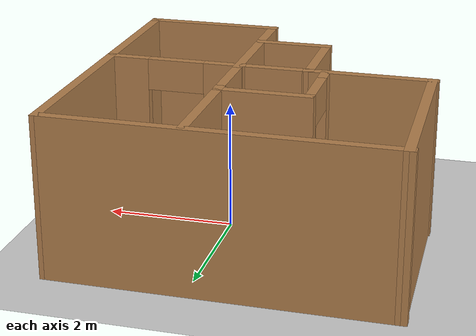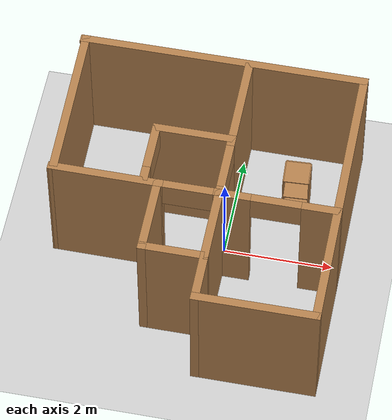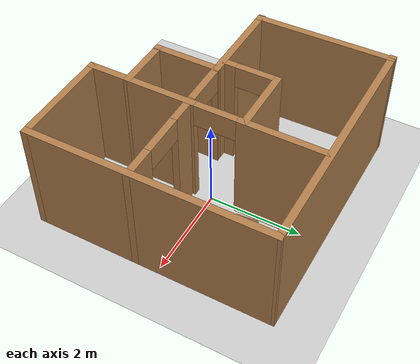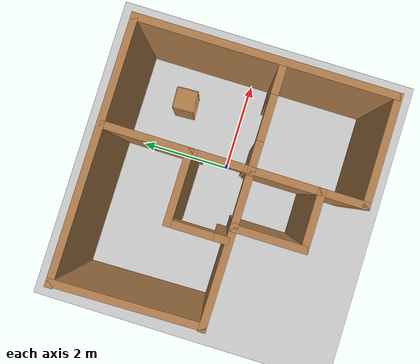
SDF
<sdf version="1.7">
 <world name="default">
  <light name="sun" type="directional">
   <pose>0 0 10 0 -0 0</pose>
   <diffuse>0.8 0.8 0.8 1</diffuse>
   <specular>0.2 0.2 0.2 1</specular>
   <attenuation>
    <range>1000</range>
    <constant>0.9</constant>
    <linear>0.01</linear>
    <quadratic>0.001</quadratic>
   </attenuation>
   <direction>-0.5 0.1 -0.9</direction>
   <spot><inner_angle>0</inner_angle><outer_angle>0</outer_angle><falloff>0</falloff></spot>
  </light>
  <model name="ground_plane">
   <static>1</static>
   <link name="link">
    <collision name="collision">
     <geometry><plane><normal>0 0 1</normal><size>100 100</size></plane></geometry>
     <surface>
      <contact><collide_bitmask>65535</collide_bitmask></contact>
      <friction><ode><mu>100</mu><mu2>50</mu2></ode></friction>
     </surface>
    </collision>
    <visual name="visual">
     <cast_shadows>0</cast_shadows>
     <geometry><plane><normal>0 0 1</normal><size>100 100</size></plane></geometry>
     <material>
      <script><uri>file://media/materials/scripts/gazebo.material</uri><name>Gazebo/Grey</name></script>
     </material>
    </visual>
   </link>
  </model>
  <gravity>0 0 -9.8</gravity>
  <magnetic_field>6e-06 2.3e-05 -4.2e-05</magnetic_field>
  <atmosphere type="adiabatic"/>
  <physics type="ode">
   <max_step_size>0.001</max_step_size>
   <real_time_factor>1</real_time_factor>
   <real_time_update_rate>1000</real_time_update_rate>
  </physics>
  <scene><ambient>0.4 0.4 0.4 1</ambient><background>0.7 0.7 0.7 1</background><shadows>1</shadows></scene>
  <spherical_coordinates>
   <surface_model>EARTH_WGS84</surface_model>
   <latitude_deg>0</latitude_deg>
   <longitude_deg>0</longitude_deg>
   <elevation>0</elevation>
   <heading_deg>0</heading_deg>
  </spherical_coordinates>
  <model name="Robot_house1">
   <pose>-0.487381 -0.117805 0 0 -0 0</pose>
   <link name="Wall_0">
    <collision name="Wall_0_Collision">
     <geometry><box><size>5.29601 0.15 2.5</size></box></geometry>
     <pose>0 0 1.25 0 -0 0</pose>
    </collision>
    <visual name="Wall_0_Visual">
     <pose>0 0 1.25 0 -0 0</pose>
     <geometry><box><size>5.29601 0.15 2.5</size></box></geometry>
     <material>
      <script><uri>file://media/materials/scripts/gazebo.material</uri><name>Gazebo/Wood</name></script>
      <ambient>1 1 1 1</ambient>
     </material>
     <meta><layer>0</layer></meta>
    </visual>
    <pose>0 2.54936 0 0 -0 -0.002235</pose>
   </link>
   <link name="Wall_1">
    <collision name="Wall_1_Collision">
     <geometry><box><size>5.25 0.15 2.5</size></box></geometry>
     <pose>0 0 1.25 0 -0 0</pose>
    </collision>
    <visual name="Wall_1_Visual">
     <pose>0 0 1.25 0 -0 0</pose>
     <geometry><box><size>5.25 0.15 2.5</size></box></geometry>
     <material>
      <script><uri>file://media/materials/scripts/gazebo.material</uri><name>Gazebo/Wood</name></script>
      <ambient>1 1 1 1</ambient>
     </material>
     <meta><layer>0</layer></meta>
    </visual>
    <pose>2.573 -0.006391 0 0 -0 -1.5708</pose>
   </link>
   <link name="Wall_11">
    <pose>-0.077 -0.356391 0 0 -0 0</pose>
    <visual name="Wall_11_Visual_0">
     <pose>-0.538775 0 1.25 0 -0 0</pose>
     <geometry><box><size>0.172449 0.15 2.5</size></box></geometry>
     <material>
      <script><uri>file://media/materials/scripts/gazebo.material</uri><name>Gazebo/Wood</name></script>
      <ambient>1 1 1 1</ambient>
     </material>
     <meta><layer>0</layer></meta>
    </visual>
    <collision name="Wall_11_Collision_0">
     <geometry><box><size>0.172449 0.15 2.5</size></box></geometry>
     <pose>-0.538775 0 1.25 0 -0 0</pose>
    </collision>
    <visual name="Wall_11_Visual_1">
     <pose>0.536225 0 1.25 0 -0 0</pose>
     <geometry><box><size>0.177551 0.15 2.5</size></box></geometry>
     <material>
      <script><uri>file://media/materials/scripts/gazebo.material</uri><name>Gazebo/Wood</name></script>
      <ambient>1 1 1 1</ambient>
     </material>
     <meta><layer>0</layer></meta>
    </visual>
    <collision name="Wall_11_Collision_1">
     <geometry><box><size>0.177551 0.15 2.5</size></box></geometry>
     <pose>0.536225 0 1.25 0 -0 0</pose>
    </collision>
    <visual name="Wall_11_Visual_2">
     <pose>-0.002551 0 2.25 0 -0 0</pose>
     <geometry><box><size>0.9 0.15 0.5</size></box></geometry>
     <material>
      <script><uri>file://media/materials/scripts/gazebo.material</uri><name>Gazebo/Wood</name></script>
      <ambient>1 1 1 1</ambient>
     </material>
     <meta><layer>0</layer></meta>
    </visual>
    <collision name="Wall_11_Collision_2">
     <geometry><box><size>0.9 0.15 0.5</size></box></geometry>
     <pose>-0.002551 0 2.25 0 -0 0</pose>
    </collision>
   </link>
   <link name="Wall_13">
    <pose>1.523 -0.356391 0 0 -0 0</pose>
    <visual name="Wall_13_Visual_0">
     <pose>-0.805525 0 1.25 0 -0 0</pose>
     <geometry><box><size>0.63895 0.15 2.5</size></box></geometry>
     <material>
      <script><uri>file://media/materials/scripts/gazebo.material</uri><name>Gazebo/Wood</name></script>
      <ambient>1 1 1 1</ambient>
     </material>
     <meta><layer>0</layer></meta>
    </visual>
    <collision name="Wall_13_Collision_0">
     <geometry><box><size>0.63895 0.15 2.5</size></box></geometry>
     <pose>-0.805525 0 1.25 0 -0 0</pose>
    </collision>
    <visual name="Wall_13_Visual_1">
     <pose>0.769475 0 1.25 0 -0 0</pose>
     <geometry><box><size>0.71105 0.15 2.5</size></box></geometry>
     <material>
      <script><uri>file://media/materials/scripts/gazebo.material</uri><name>Gazebo/Wood</name></script>
      <ambient>1 1 1 1</ambient>
     </material>
     <meta><layer>0</layer></meta>
    </visual>
    <collision name="Wall_13_Collision_1">
     <geometry><box><size>0.71105 0.15 2.5</size></box></geometry>
     <pose>0.769475 0 1.25 0 -0 0</pose>
    </collision>
    <visual name="Wall_13_Visual_2">
     <pose>-0.03605 0 2.25 0 -0 0</pose>
     <geometry><box><size>0.9 0.15 0.5</size></box></geometry>
     <material>
      <script><uri>file://media/materials/scripts/gazebo.material</uri><name>Gazebo/Wood</name></script>
      <ambient>1 1 1 1</ambient>
     </material>
     <meta><layer>0</layer></meta>
    </visual>
    <collision name="Wall_13_Collision_2">
     <geometry><box><size>0.9 0.15 0.5</size></box></geometry>
     <pose>-0.03605 0 2.25 0 -0 0</pose>
    </collision>
   </link>
   <link name="Wall_15">
    <collision name="Wall_15_Collision">
     <geometry><box><size>1.5 0.15 2.5</size></box></geometry>
     <pose>0 0 1.25 0 -0 0</pose>
    </collision>
    <visual name="Wall_15_Visual">
     <pose>0 0 1.25 0 -0 0</pose>
     <geometry><box><size>1.5 0.15 2.5</size></box></geometry>
     <material>
      <script><uri>file://media/materials/scripts/gazebo.material</uri><name>Gazebo/Wood</name></script>
      <ambient>1 1 1 1</ambient>
     </material>
     <meta><layer>0</layer></meta>
    </visual>
    <pose>-0.211021 0.830257 0 0 -0 3.14159</pose>
   </link>
   <link name="Wall_16">
    <pose>-0.886021 0.280257 0 0 -0 -1.5708</pose>
    <visual name="Wall_16_Visual_0">
     <pose>-0.596374 0 1.25 0 -0 0</pose>
     <geometry><box><size>0.057252 0.15 2.5</size></box></geometry>
     <material>
      <script><uri>file://media/materials/scripts/gazebo.material</uri><name>Gazebo/Wood</name></script>
      <ambient>1 1 1 1</ambient>
     </material>
     <meta><layer>0</layer></meta>
    </visual>
    <collision name="Wall_16_Collision_0">
     <geometry><box><size>0.057252 0.15 2.5</size></box></geometry>
     <pose>-0.596374 0 1.25 0 -0 0</pose>
    </collision>
    <visual name="Wall_16_Visual_1">
     <pose>0.478626 0 1.25 0 -0 0</pose>
     <geometry><box><size>0.292748 0.15 2.5</size></box></geometry>
     <material>
      <script><uri>file://media/materials/scripts/gazebo.material</uri><name>Gazebo/Wood</name></script>
      <ambient>1 1 1 1</ambient>
     </material>
     <meta><layer>0</layer></meta>
    </visual>
    <collision name="Wall_16_Collision_1">
     <geometry><box><size>0.292748 0.15 2.5</size></box></geometry>
     <pose>0.478626 0 1.25 0 -0 0</pose>
    </collision>
    <visual name="Wall_16_Visual_2">
     <pose>-0.117748 0 2.25 0 -0 0</pose>
     <geometry><box><size>0.9 0.15 0.5</size></box></geometry>
     <material>
      <script><uri>file://media/materials/scripts/gazebo.material</uri><name>Gazebo/Wood</name></script>
      <ambient>1 1 1 1</ambient>
     </material>
     <meta><layer>0</layer></meta>
    </visual>
    <collision name="Wall_16_Collision_2">
     <geometry><box><size>0.9 0.15 0.5</size></box></geometry>
     <pose>-0.117748 0 2.25 0 -0 0</pose>
    </collision>
   </link>
   <link name="Wall_2">
    <collision name="Wall_2_Collision">
     <geometry><box><size>2.25 0.15 2.5</size></box></geometry>
     <pose>0 0 1.25 0 -0 0</pose>
    </collision>
    <visual name="Wall_2_Visual">
     <pose>0 0 1.25 0 -0 0</pose>
     <geometry><box><size>2.25 0.15 2.5</size></box></geometry>
     <material>
      <script><uri>file://media/materials/scripts/gazebo.material</uri><name>Gazebo/Wood</name></script>
      <ambient>1 1 1 1</ambient>
     </material>
     <meta><layer>0</layer></meta>
    </visual>
    <pose>1.523 -2.55639 0 0 -0 3.14159</pose>
   </link>
   <link name="Wall_3">
    <collision name="Wall_3_Collision">
     <geometry><box><size>1 0.15 2.5</size></box></geometry>
     <pose>0 0 1.25 0 -0 0</pose>
    </collision>
    <visual name="Wall_3_Visual">
     <pose>0 0 1.25 0 -0 0</pose>
     <geometry><box><size>1 0.15 2.5</size></box></geometry>
     <material>
      <script><uri>file://media/materials/scripts/gazebo.material</uri><name>Gazebo/Wood</name></script>
      <ambient>1 1 1 1</ambient>
     </material>
     <meta><layer>0</layer></meta>
    </visual>
    <pose>0.473 -2.13139 0 0 -0 1.5708</pose>
   </link>
   <link name="Wall_4">
    <collision name="Wall_4_Collision">
     <geometry><box><size>1.25 0.15 2.5</size></box></geometry>
     <pose>0 0 1.25 0 -0 0</pose>
    </collision>
    <visual name="Wall_4_Visual">
     <pose>0 0 1.25 0 -0 0</pose>
     <geometry><box><size>1.25 0.15 2.5</size></box></geometry>
     <material>
      <script><uri>file://media/materials/scripts/gazebo.material</uri><name>Gazebo/Wood</name></script>
      <ambient>1 1 1 1</ambient>
     </material>
     <meta><layer>0</layer></meta>
    </visual>
    <pose>-0.077 -1.70639 0 0 -0 3.14159</pose>
   </link>
   <link name="Wall_5">
    <collision name="Wall_5_Collision">
     <geometry><box><size>1.5 0.15 2.5</size></box></geometry>
     <pose>0 0 1.25 0 -0 0</pose>
    </collision>
    <visual name="Wall_5_Visual">
     <pose>0 0 1.25 0 -0 0</pose>
     <geometry><box><size>1.5 0.15 2.5</size></box></geometry>
     <material>
      <script><uri>file://media/materials/scripts/gazebo.material</uri><name>Gazebo/Wood</name></script>
      <ambient>1 1 1 1</ambient>
     </material>
     <meta><layer>0</layer></meta>
    </visual>
    <pose>-0.627 -1.03139 0 0 -0 1.5708</pose>
   </link>
   <link name="Wall_6">
    <collision name="Wall_6_Collision">
     <geometry><box><size>2.04603 0.15 2.5</size></box></geometry>
     <pose>0 0 1.25 0 -0 0</pose>
    </collision>
    <visual name="Wall_6_Visual">
     <pose>0 0 1.25 0 -0 0</pose>
     <geometry><box><size>2.04603 0.15 2.5</size></box></geometry>
     <material>
      <script><uri>file://media/materials/scripts/gazebo.material</uri><name>Gazebo/Wood</name></script>
      <ambient>1 1 1 1</ambient>
     </material>
     <meta><layer>0</layer></meta>
    </visual>
    <pose>-1.575 -0.350641 0 0 -0 3.13553</pose>
   </link>
   <link name="Wall_7">
    <collision name="Wall_7_Collision">
     <geometry><box><size>3.05043 0.15 2.5</size></box></geometry>
     <pose>0 0 1.25 0 -0 0</pose>
    </collision>
    <visual name="Wall_7_Visual">
     <pose>0 0 1.25 0 -0 0</pose>
     <geometry><box><size>3.05043 0.15 2.5</size></box></geometry>
     <material>
      <script><uri>file://media/materials/scripts/gazebo.material</uri><name>Gazebo/Wood</name></script>
      <ambient>1 1 1 1</ambient>
     </material>
     <meta><layer>0</layer></meta>
    </visual>
    <pose>-2.525 1.10511 0 0 -0 1.58804</pose>
   </link>
   <link name="Wall_9">
    <pose>0.476094 0.39081 0 0 -0 -1.57227</pose>
    <visual name="Wall_9_Visual_0">
     <pose>-1.23101 0 1.25 0 -0 0</pose>
     <geometry><box><size>1.88238 0.15 2.5</size></box></geometry>
     <material>
      <script><uri>file://media/materials/scripts/gazebo.material</uri><name>Gazebo/Wood</name></script>
      <ambient>1 1 1 1</ambient>
     </material>
     <meta><layer>0</layer></meta>
    </visual>
    <collision name="Wall_9_Collision_0">
     <geometry><box><size>1.88238 0.15 2.5</size></box></geometry>
     <pose>-1.23101 0 1.25 0 -0 0</pose>
    </collision>
    <visual name="Wall_9_Visual_1">
     <pose>1.39119 0 1.25 0 -0 0</pose>
     <geometry><box><size>1.56202 0.15 2.5</size></box></geometry>
     <material>
      <script><uri>file://media/materials/scripts/gazebo.material</uri><name>Gazebo/Wood</name></script>
      <ambient>1 1 1 1</ambient>
     </material>
     <meta><layer>0</layer></meta>
    </visual>
    <collision name="Wall_9_Collision_1">
     <geometry><box><size>1.56202 0.15 2.5</size></box></geometry>
     <pose>1.39119 0 1.25 0 -0 0</pose>
    </collision>
    <visual name="Wall_9_Visual_2">
     <pose>0.16018 0 2.25 0 -0 0</pose>
     <geometry><box><size>0.9 0.15 0.5</size></box></geometry>
     <material>
      <script><uri>file://media/materials/scripts/gazebo.material</uri><name>Gazebo/Wood</name></script>
      <ambient>1 1 1 1</ambient>
     </material>
     <meta><layer>0</layer></meta>
    </visual>
    <collision name="Wall_9_Collision_2">
     <geometry><box><size>0.9 0.15 0.5</size></box></geometry>
     <pose>0.16018 0 2.25 0 -0 0</pose>
    </collision>
   </link>
   <static>1</static>
  </model>
  <model name="cabinet">
   <static>1</static>
   <link name="cabinet_bottom_plate">
    <inertial>
     <pose>0 0 -1 0 -0 0</pose>
     <inertia><ixx>2.05</ixx><ixy>0</ixy><ixz>0</ixz><iyy>2.05</iyy><iyz>0</iyz><izz>2.05</izz></inertia>
     <mass>25</mass>
    </inertial>
    <collision name="cabinet_bottom_plate_geom">
     <pose>0 0 0.01 0 -0 0</pose>
     <geometry><box><size>0.45 0.45 0.02</size></box></geometry>
    </collision>
    <visual name="cabinet_bottom_plate_geom_visual">
     <pose>0 0 0.01 0 -0 0</pose>
     <geometry><box><size>0.45 0.45 0.02</size></box></geometry>
     <material>
      <script><uri>file://media/materials/scripts/gazebo.material</uri><name>Gazebo/Wood</name></script>
     </material>
    </visual>
    <collision name="cabinet_bottom_plate_geom_cabinet_back_plate">
     <pose>0.235 0 0.51 0 -0 0</pose>
     <geometry><box><size>0.02 0.45 1.02</size></box></geometry>
    </collision>
    <visual name="cabinet_bottom_plate_geom_cabinet_back_plate_visual">
     <pose>0.235 0 0.51 0 -0 0</pose>
     <geometry><box><size>0.02 0.45 1.02</size></box></geometry>
     <material>
      <script><uri>file://media/materials/scripts/gazebo.material</uri><name>Gazebo/Wood</name></script>
     </material>
    </visual>
    <collision name="cabinet_bottom_plate_geom_cabinet_left_plate">
     <pose>0 0.235 0.51 0 -0 0</pose>
     <geometry><box><size>0.45 0.02 1.02</size></box></geometry>
    </collision>
    <visual name="cabinet_bottom_plate_geom_cabinet_left_plate_visual">
     <pose>0 0.235 0.51 0 -0 0</pose>
     <geometry><box><size>0.45 0.02 1.02</size></box></geometry>
     <material>
      <script><uri>file://media/materials/scripts/gazebo.material</uri><name>Gazebo/Wood</name></script>
     </material>
    </visual>
    <collision name="cabinet_bottom_plate_geom_cabinet_middle_plate">
     <pose>0 0 0.51 0 -0 0</pose>
     <geometry><box><size>0.45 0.45 0.02</size></box></geometry>
    </collision>
    <visual name="cabinet_bottom_plate_geom_cabinet_middle_plate_visual">
     <pose>0 0 0.51 0 -0 0</pose>
     <geometry><box><size>0.45 0.45 0.02</size></box></geometry>
     <material>
      <script><uri>file://media/materials/scripts/gazebo.material</uri><name>Gazebo/Wood</name></script>
     </material>
    </visual>
    <collision name="cabinet_bottom_plate_geom_cabinet_right_plate">
     <pose>0 -0.235 0.51 0 -0 0</pose>
     <geometry><box><size>0.45 0.02 1.02</size></box></geometry>
    </collision>
    <visual name="cabinet_bottom_plate_geom_cabinet_right_plate_visual">
     <pose>0 -0.235 0.51 0 -0 0</pose>
     <geometry><box><size>0.45 0.02 1.02</size></box></geometry>
     <material>
      <script><uri>file://media/materials/scripts/gazebo.material</uri><name>Gazebo/Wood</name></script>
     </material>
    </visual>
    <collision name="cabinet_bottom_plate_geom_cabinet_top_plate">
     <pose>0 0 1.01 0 -0 0</pose>
     <geometry><box><size>0.45 0.45 0.02</size></box></geometry>
    </collision>
    <visual name="cabinet_bottom_plate_geom_cabinet_top_plate_visual">
     <pose>0 0 1.01 0 -0 0</pose>
     <geometry><box><size>0.45 0.45 0.02</size></box></geometry>
     <material>
      <script><uri>file://media/materials/scripts/gazebo.material</uri><name>Gazebo/Wood</name></script>
     </material>
    </visual>
   </link>
   <pose>1.10586 1.29707 0 0.003705 -0.033437 1.61948</pose>
  </model>
 </world>
</sdf>
